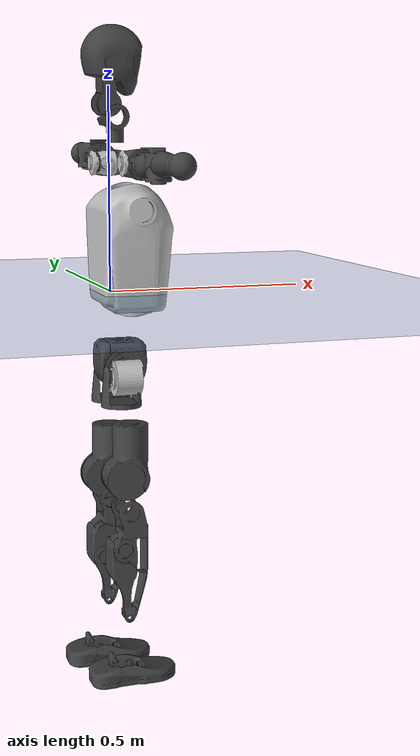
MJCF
<mujoco model="T1">
  <compiler angle="radian" assetdir="assets" balanceinertia="true" inertiafromgeom="false"/>

  <option timestep="0.005" density="1.2" viscosity="2e-05"/>

  <size nkey="1"/>

  <visual>
    <quality shadowsize="8192"/>
    <map shadowclip="0.5"/>
  </visual>

  <default>
    <default class="/">
      <joint armature="0.01" damping="0.01" frictionloss="0.1"/>
      <geom contype="0" conaffinity="0" group="1" solref="-1000 -80"/>
      <site size="0.01 0.005 0.005" group="5"/>
      <general forcelimited="true" biastype="affine" gainprm="25" biasprm="0 -25 -0.6"/>
      <default class="t1">
        <geom rgba="0.25 0.25 0.25 1"/>
        <default class="visual">
          <geom type="mesh" group="2"/>
        </default>
        <default class="collision">
          <geom group="3"/>
        </default>
        <default class="foot">
          <geom size="0.1115 0.05 0.015" type="box" condim="6" group="4" priority="1" solimp="0.015 1 0.015"/>
        </default>
        <default class="reward_collision_sphere">
          <geom group="5" rgba="1 0 0 1"/>
        </default>
      </default>
    </default>
  </default>

  <asset>
    <texture type="skybox" colorspace="auto" name="//unnamed_texture_0" builtin="gradient" rgb1="0.95 0.95 0.95" rgb2="0.95 0.95 0.95" width="100" height="600"/>
    <texture type="2d" colorspace="auto" name="texplane" builtin="checker" rgb1="0.345 0.575 0.748" rgb2="0.345 0.575 0.748" markrgb="1 1 1" width="512" height="512"/>
    <material name="MatPlane" class="/" texture="texplane" texuniform="true" texrepeat="2 2" specular="0.9"/>
    <mesh name="Trunk" class="/" file="Trunk.stl"/>
    <mesh name="H1" class="/" file="H1.stl"/>
    <mesh name="H2" class="/" file="H2.stl"/>
    <mesh name="AL1" class="/" file="AL1.stl"/>
    <mesh name="AL2" class="/" file="AL2.stl"/>
    <mesh name="AL3" class="/" file="AL3.stl"/>
    <mesh name="left_hand_link" class="/" file="left_hand_link.stl"/>
    <mesh name="AR1" class="/" file="AR1.stl"/>
    <mesh name="AR2" class="/" file="AR2.stl"/>
    <mesh name="AR3" class="/" file="AR3.stl"/>
    <mesh name="right_hand_link" class="/" file="right_hand_link.stl"/>
    <mesh name="Waist" class="/" file="Waist.stl"/>
    <mesh name="Hip_Pitch_Left" class="/" file="Hip_Pitch_Left.stl"/>
    <mesh name="Hip_Roll_Left" class="/" file="Hip_Roll_Left.stl"/>
    <mesh name="Hip_Yaw_Left" class="/" file="Hip_Yaw_Left.stl"/>
    <mesh name="Shank_Left" class="/" file="Shank_Left.stl"/>
    <mesh name="Ankle_Cross_Left" class="/" file="Ankle_Cross_Left.stl"/>
    <mesh name="left_foot_link" class="/" file="left_foot_link.stl"/>
    <mesh name="Hip_Pitch_Right" class="/" file="Hip_Pitch_Right.stl"/>
    <mesh name="Hip_Roll_Right" class="/" file="Hip_Roll_Right.stl"/>
    <mesh name="Hip_Yaw_Right" class="/" file="Hip_Yaw_Right.stl"/>
    <mesh name="Shank_Right" class="/" file="Shank_Right.stl"/>
    <mesh name="Ankle_Cross_Right" class="/" file="Ankle_Cross_Right.stl"/>
    <mesh name="right_foot_link" class="/" file="right_foot_link.stl"/>
  </asset>

  <worldbody>
    <geom name="floor" class="/" size="100 100 0.125" type="plane" group="0" material="MatPlane"/>
    <light name="toplight_shadow" class="/" pos="0 0 5" dir="0.0990148 0.0990148 -0.990148" type="directional" ambient="0.04 0.04 0.04" diffuse="0.55 0.55 0.55" specular="0.12 0.12 0.12"/>
    <light name="toplight_fill" class="/" pos="0 0 5" dir="0.0990148 0.0990148 -0.990148" type="directional" castshadow="false" ambient="0.04 0.04 0.04" diffuse="0.3 0.3 0.3" specular="0.08 0.08 0.08"/>
    <body name="trunk" childclass="t1" pos="-0.00371142 0.00538016 -0.0125403" quat="0.99999 0.00291412 -0.00304039 -0.00138992">
      <inertial pos="0.0323151 0.0118047 0.151059" quat="0.999993 -0.00163713 -0.00218464 -0.00266776" mass="7.99897" diaginertia="0.000599532 0.00779264 0.424429"/>
      <joint name="//unnamed_joint_0" type="free" armature="0" damping="0" frictionloss="0"/>
      <geom name="//unnamed_geom_1" class="visual" rgba="0.76 0.76 0.76 1" mesh="Trunk"/>
      <geom name="//unnamed_geom_2" class="collision" size="0.0629493 0.0839325 0.125899" pos="0.0226223 0 0.182645" type="box"/>
      <geom name="//unnamed_geom_3" class="reward_collision_sphere" size="0.0965223" pos="0.0226223 0 0.152204"/>
      <geom name="//unnamed_geom_4" class="reward_collision_sphere" size="0.0125899" pos="0.0226223 0.0526062 0"/>
      <geom name="//unnamed_geom_5" class="reward_collision_sphere" size="0.0125899" pos="0.0226223 -0.0526062 0"/>
      <geom name="//unnamed_geom_6" class="reward_collision_sphere" size="0.0125899" pos="0.0226223 0.0662219 0.273967"/>
      <geom name="//unnamed_geom_7" class="reward_collision_sphere" size="0.0125899" pos="0.0226223 -0.0662219 0.273967"/>
      <site name="imu" pos="0.0838049 -0.0858509 0.0826477" size="0.00839325"/>
      <camera name="track" pos="0 -1.23779 0" quat="0.707107 0.707107 0 0" mode="trackcom"/>
      <camera name="ego_camera" pos="0.0459987 0 0.639256" quat="-0.5 -0.5 0.5 0.5"/>
      <body name="H1" pos="0.0240514 0.00540204 0.377686" quat="0.999966 0.00789691 0.000310484 0.00225171">
        <inertial pos="-0.001913 -0.00615965 0.0788831" quat="0.77176 -0.00746456 -0.0229429 0.635456" mass="0.165247" diaginertia="1.74787e-06 1.47901e-05 0.00100977"/>
        <joint name="AAHead_yaw" pos="0 0 0" axis="0.0499359 -0.0258807 0.998417" stiffness="0.0323129" range="-1.67262 1.62315" armature="0.000529696" damping="0.0693845" frictionloss="0.0741058"/>
        <geom name="//unnamed_geom_8" class="visual" mesh="H1"/>
        <body name="H2" pos="-0.0185095 0.0114359 0.0925053" quat="0.999986 0.00372002 -0.000804639 0.00361524">
          <inertial pos="0.00480372 -0.00550352 0.153866" quat="0.985035 0.103549 -0.0980738 -0.0967713" mass="0.39853" diaginertia="1.4613e-05 0.000178624 0.011867"/>
          <joint name="Head_pitch" pos="0 0 0" axis="0.0600016 -0.997932 -0.0230341" range="-1.09745 0.5817" armature="0.00531102" damping="0.0500038" frictionloss="0.105482"/>
          <geom name="//unnamed_geom_9" class="visual" mesh="H2"/>
          <geom name="//unnamed_geom_10" class="collision" size="0.067146" pos="0.00377038 0 0.167424"/>
          <geom name="//unnamed_geom_11" class="reward_collision_sphere" size="0.0755392" pos="0.00754077 0 0.152204"/>
        </body>
      </body>
      <body name="AL1" pos="0.0201117 0.0672831 0.325532" quat="0.999975 -0.00257132 0.0039728 -0.00528105">
        <inertial pos="0.00204141 0.0130102 -0.0013033" quat="0.514778 0.513225 -0.490712 0.480422" mass="0.298191" diaginertia="8.89903e-06 0.000130723 0.00266797"/>
        <joint name="Left_Shoulder_Pitch" pos="0 0 0" axis="-0.010188 0.999891 0.0106791" stiffness="0.0441506" range="-3.49627 1.31609" armature="0.0113157" damping="0" frictionloss="0.134483"/>
        <geom name="//unnamed_geom_12" class="visual" rgba="0.76 0.76 0.76 1" mesh="AL1"/>
        <body name="AL2" pos="0.0144689 0.0185735 0.000708696" quat="1 0.000311211 -0.000517785 0.000206391">
          <inertial pos="-0.00194969 0.0307693 -0.0154747" quat="0.497749 0.509734 -0.474091 0.517354" mass="0.0643849" diaginertia="2.62782e-06 3.16491e-05 0.00105168"/>
          <joint name="Left_Shoulder_Roll" pos="0 0 0" axis="-0.999615 -0.0243598 0.013259" range="-1.90352 1.41185" armature="0.0146187" damping="0.0658882" frictionloss="0.0818242"/>
          <geom name="//unnamed_geom_13" class="visual" mesh="AL2"/>
          <body name="AL3" pos="-0.0121841 0.0410879 0.0150763" quat="0.999996 0.00120805 -0.000159446 0.00235836">
            <inertial pos="-0.0122417 0.0523286 -0.00296694" quat="0.69374 0.718525 0.0213881 0.044603" mass="0.711441" diaginertia="0.000125983 0.00108741 0.00683459"/>
            <joint name="Left_Elbow_Pitch" pos="0 0 0" axis="0.0509125 -0.996019 -0.0731649" stiffness="0.0866787" range="-2.60572 1.9831" armature="0.0160478" damping="0.100445" frictionloss="0.138804"/>
            <geom name="//unnamed_geom_14" class="visual" mesh="AL3"/>
            <geom name="//unnamed_geom_15" class="collision" size="0.0251797 0.0629493" pos="0 0.0309448 0" quat="0.707105 0.707108 0 0" type="cylinder"/>
            <geom name="//unnamed_geom_16" class="reward_collision_sphere" size="0.0302157"/>
            <body name="left_hand_link" pos="0.0143055 0.0774269 0.00399476" quat="0.999987 -0.00432251 0.00190055 0.00179183">
              <inertial pos="0.00557315 0.0621286 -0.0102117" quat="0.708521 0.705689 -0.00013112 -0.000687789" mass="0.190736" diaginertia="5.34497e-05 0.000629687 0.00175914"/>
              <joint name="Left_Elbow_Yaw" pos="0 0 0" axis="-0.0095388 -0.0613548 0.99807" stiffness="0.0371294" range="-2.2346 -0.0833043" armature="0.000621645" damping="0" frictionloss="0.131997"/>
              <geom name="//unnamed_geom_17" class="visual" mesh="left_hand_link"/>
              <geom name="//unnamed_geom_18" class="collision" size="0.0251797 0.0734409" pos="0 0.0804565 0" quat="0.707105 0.707108 0 0" type="cylinder"/>
              <geom name="//unnamed_geom_19" class="reward_collision_sphere" size="0.0419662"/>
              <geom name="//unnamed_geom_20" class="reward_collision_sphere" size="0.0293764" pos="0 0.0680786 0"/>
              <geom name="//unnamed_geom_21" class="reward_collision_sphere" size="0.0293764" pos="0 0.133063 0"/>
            </body>
          </body>
        </body>
      </body>
      <body name="AR1" pos="0.0363818 -0.0767777 0.330916" quat="0.999997 0.00149817 0.000499008 0.00165339">
        <inertial pos="0.0160186 -0.0370784 -0.0131174" quat="0.464274 0.536648 -0.548202 0.442644" mass="0.260045" diaginertia="1.12871e-05 0.000127417 0.00180868"/>
        <joint name="Right_Shoulder_Pitch" pos="0 0 0" axis="0.00731434 -0.999931 -0.00919865" stiffness="0.00112611" range="-1.20574 3.29072" armature="0.00769495" damping="0.00507165" frictionloss="0.138418"/>
        <geom name="//unnamed_geom_22" class="visual" rgba="0.76 0.76 0.76 1" mesh="AR1"/>
        <body name="AR2" pos="0.00752621 -0.020564 -0.000952894" quat="0.999991 -0.00316876 0.0019595 0.00189052">
          <inertial pos="-0.00634812 -0.0289142 -0.00999537" quat="0.513748 0.487115 -0.511312 0.487177" mass="0.0991638" diaginertia="2.88198e-06 2.51396e-05 0.00123452"/>
          <joint name="Right_Shoulder_Roll" pos="0 0 0" axis="-0.998952 0.03718 0.0266905" stiffness="0.0256583" range="-1.95434 1.22662" armature="0.0134259" damping="0" frictionloss="0.0599093"/>
          <geom name="//unnamed_geom_23" class="visual" mesh="AR2"/>
          <body name="AR3" pos="0.00463901 -0.0316865 -0.00487509" quat="1 0.000328615 -0.000240974 -6.62345e-05">
            <inertial pos="0.000452665 -0.0363473 -0.0141099" quat="0.712893 0.698177 0.0429877 0.0498398" mass="0.537578" diaginertia="8.33614e-05 0.00132585 0.00409599"/>
            <joint name="Right_Elbow_Pitch" pos="0 0 0" axis="-0.0214205 0.998725 -0.0457166" range="-2.50454 2.53663" armature="0.00718297" damping="0" frictionloss="0.0825846"/>
            <geom name="//unnamed_geom_24" class="visual" mesh="AR3"/>
            <geom name="//unnamed_geom_25" class="collision" size="0.0251797 0.0629493" pos="0 -0.0309448 0" quat="0.707105 0.707108 0 0" type="cylinder"/>
            <geom name="//unnamed_geom_26" class="reward_collision_sphere" size="0.0302157"/>
            <body name="right_hand_link" pos="0.00508295 -0.0889428 0.00689544" quat="0.999988 -0.000928656 0.00376387 0.00301872">
              <inertial pos="-0.00243414 -0.062088 0.0152881" quat="0.721616 0.692258 -0.00682988 0.0017176" mass="0.221068" diaginertia="5.8377e-05 0.000767911 0.00210377"/>
              <joint name="Right_Elbow_Yaw" pos="0 0 0" axis="-0.00565015 0.0245392 0.999683" stiffness="0.00481339" range="-0.109095 2.39643" armature="0.00716855" damping="0.0427081" frictionloss="0.031103"/>
              <geom name="//unnamed_geom_27" class="visual" mesh="right_hand_link"/>
              <geom name="//unnamed_geom_28" class="collision" size="0.0251797 0.0734409" pos="0 -0.0804565 0" quat="0.707105 0.707108 0 0" type="cylinder"/>
              <geom name="//unnamed_geom_29" class="reward_collision_sphere" size="0.0419662"/>
              <geom name="//unnamed_geom_30" class="reward_collision_sphere" size="0.0293764" pos="0 -0.0680786 0"/>
              <geom name="//unnamed_geom_31" class="reward_collision_sphere" size="0.0293764" pos="0 -0.133063 0"/>
            </body>
          </body>
        </body>
      </body>
      <body name="Waist" pos="0.0250307 -0.00554276 -0.177419" quat="0.999983 -0.00157222 0.00552818 0.000350666">
        <inertial pos="0.0198533 -0.0132527 0.0116043" quat="0.979563 0.0105888 -0.200763 0.00618346" mass="1.85494" diaginertia="5.52095e-05 0.000581107 0.037261"/>
        <joint name="Waist" pos="0 0 0" axis="-0.0556742 -0.0646632 0.996353" range="-1.73848 1.74297" armature="0.012697" damping="0" frictionloss="0.093931"/>
        <geom name="//unnamed_geom_32" class="visual" mesh="Waist"/>
        <body name="Hip_Pitch_Left" pos="0.0158985 0.0541052 -0.0130679" quat="0.999956 -0.00193177 -0.00186294 0.00897812">
          <inertial pos="0.0144494 -0.0213943 -0.0249913" quat="0.977197 0.210924 0.020231 0.0136934" mass="0.639829" diaginertia="1.68903e-05 0.000175648 0.00981173"/>
          <joint name="Left_Hip_Pitch" pos="0 0 0" axis="-0.00504135 0.998937 0.0458163" range="-1.65811 1.49706" armature="0.0148969" damping="0.0201003" frictionloss="0.0113096"/>
          <geom name="//unnamed_geom_33" class="visual" rgba="0.76 0.76 0.76 1" mesh="Hip_Pitch_Left"/>
          <body name="Hip_Roll_Left" pos="-0.0185139 0.0130859 -0.0118948" quat="0.999957 -0.00517321 0.00711388 0.00298825">
            <inertial pos="-0.0116284 0.00972807 -0.0653043" quat="0.718822 -0.0220741 -0.0096375 0.694777" mass="0.237316" diaginertia="1.29442e-05 0.000117978 0.00392624"/>
            <joint name="Left_Hip_Roll" pos="0 0 0" axis="-0.999415 -0.0129658 0.0316576" range="-1.54489 0.13665" armature="0.00361346" damping="0" frictionloss="0.0830033"/>
            <geom name="//unnamed_geom_34" class="visual" mesh="Hip_Roll_Left"/>
            <geom name="//unnamed_geom_35" class="reward_collision_sphere" size="0.0461629"/>
            <body name="Hip_Yaw_Left" pos="-0.00954133 -0.00835608 -0.13565" quat="0.999994 0.00105681 0.00136679 -0.00283297">
              <inertial pos="-0.00219558 -0.0185139 -0.152172" quat="0.690161 -0.0573844 -0.0615989 0.718743" mass="1.45001" diaginertia="0.000223234 0.0026152 0.0224593"/>
              <joint name="Left_Hip_Yaw" pos="0 0 0" axis="0.0366735 -0.0229982 -0.999063" range="-0.961339 1.05487" armature="0.00867976" damping="0.0300569" frictionloss="0.0316569"/>
              <geom name="//unnamed_geom_36" class="visual" mesh="Hip_Yaw_Left"/>
              <geom name="//unnamed_geom_37" class="collision" size="0.0419662 0.067146" type="cylinder"/>
              <body name="Shank_Left" pos="-0.00227083 0.00040433 -0.19213" quat="0.999975 0.00424205 0.000122953 -0.00570833">
                <inertial pos="-0.00463868 0.0130525 -0.198746" quat="0.999627 0.026618 -0.00017385 -0.00607664" mass="1.19809" diaginertia="0.000291259 0.00293324 0.0166461"/>
                <joint name="Left_Knee_Pitch" pos="0 0 0" axis="0.0113767 0.999155 0.0395042" range="0.0419588 2.64126" armature="0.0020002" damping="0.0545566" frictionloss="0.0843802"/>
                <geom name="//unnamed_geom_38" class="visual" mesh="Shank_Left"/>
                <geom name="//unnamed_geom_39" class="collision" size="0.0419662 0.0629493" pos="0 0 -0.182645" type="cylinder"/>
                <geom name="//unnamed_geom_40" class="reward_collision_sphere" size="0.0545561"/>
                <body name="Ankle_Cross_Left" pos="-0.0106118 0.0141174 -0.428613" quat="0.999988 -0.000166583 0.000979688 0.00476939">
                  <inertial pos="0.00436217 -0.00278769 -0.0205412" quat="0.437978 0.576766 0.497916 0.477071" mass="0.045017" diaginertia="1.65724e-07 2.12359e-06 8.46674e-05"/>
                  <joint name="Left_Ankle_Pitch" pos="0 0 0" axis="-0.00973418 0.999909 0.00933533" range="-0.529802 0.0111189" armature="0.00368223" damping="0.0980311" frictionloss="0.0346313"/>
                  <geom name="//unnamed_geom_41" class="visual" mesh="Ankle_Cross_Left"/>
                  <body name="left_foot_link" pos="0.0113147 0.011238 -0.00283445" quat="0.999964 7.88693e-05 0.00152779 -0.00839078">
                    <inertial pos="0.00706169 -0.00666974 -0.0180362" quat="-0.0247679 0.568775 0.0131947 0.822014" mass="0.301956" diaginertia="1.76438e-05 0.000158567 0.0105307"/>
                    <joint name="Left_Ankle_Roll" pos="0 0 0" axis="-0.997129 0.0125913 -0.074666" range="-0.516202 0.092278" armature="0.00766821" damping="0" frictionloss="0.00445231"/>
                    <geom name="//unnamed_geom_42" class="visual" mesh="left_foot_link"/>
                    <geom name="left_foot" class="foot" size="0.0736512 0.0578349 0.003678" pos="0.00377038 0 -0.0228306"/>
                    <geom name="//unnamed_geom_44" class="reward_collision_sphere" size="0.0436449" pos="0.00377038 0 -0.0228306"/>
                    <geom name="//unnamed_geom_45" class="reward_collision_sphere" size="0.0251797" pos="0.0358186 -0.0142346 -0.0228306"/>
                    <geom name="//unnamed_geom_46" class="reward_collision_sphere" size="0.0251797" pos="-0.0263927 -0.0142346 -0.0228306"/>
                    <site name="left_foot" class="foot" pos="0.00377038 0 -0.0228306" size="0.00839325"/>
                  </body>
                </body>
              </body>
            </body>
          </body>
        </body>
        <body name="Hip_Pitch_Right" pos="0.000952531 -0.0622189 0.00144124" quat="0.999997 0.000160312 -0.0022421 -0.00112819">
          <inertial pos="0.00981376 0.00545838 -0.0171648" quat="0.985514 -0.157154 0.0538967 -0.0340616" mass="0.825419" diaginertia="1.68651e-05 0.000140712 0.0138434"/>
          <joint name="Right_Hip_Pitch" pos="0 0 0" axis="-0.0221962 -0.999381 -0.0273046" range="-1.65025 2.02245" armature="0.00373432" damping="0" frictionloss="0.0749913"/>
          <geom name="//unnamed_geom_47" class="visual" rgba="0.76 0.76 0.76 1" mesh="Hip_Pitch_Right"/>
          <body name="Hip_Roll_Right" pos="-0.0113879 0.00106086 -0.014376" quat="0.999996 0.00152252 0.00171648 -0.00177493">
            <inertial pos="0.00206638 -0.0125863 -0.0830586" quat="0.720567 -0.041 -0.0597606 0.689587" mass="0.244221" diaginertia="1.15857e-05 0.00011967 0.00456988"/>
            <joint name="Right_Hip_Roll" pos="0 0 0" axis="-0.999348 -0.0163857 0.0321682" stiffness="0.0932845" range="-0.0764049 1.60387" armature="0.0137329" damping="0" frictionloss="0.0760943"/>
            <geom name="//unnamed_geom_48" class="visual" mesh="Hip_Roll_Right"/>
            <geom name="//unnamed_geom_49" class="reward_collision_sphere" size="0.0461629"/>
            <body name="Hip_Yaw_Right" pos="0.0153559 -0.0181398 -0.119051" quat="1 -3.1457e-05 0.000105064 -0.00024477">
              <inertial pos="0.0111993 0.00150451 -0.118204" quat="0.683744 -0.0394875 -0.0933357 0.72265" mass="0.959933" diaginertia="0.00017309 0.00198142 0.0182449"/>
              <joint name="Right_Hip_Yaw" pos="0 0 0" axis="-0.012504 -0.0274332 -0.999545" stiffness="0.0404113" range="-1.31096 1.2291" armature="0.00621694" damping="0.0385858" frictionloss="0.0866285"/>
              <geom name="//unnamed_geom_50" class="visual" mesh="Hip_Yaw_Right"/>
              <geom name="//unnamed_geom_51" class="collision" size="0.0419662 0.067146" type="cylinder"/>
              <body name="Shank_Right" pos="-0.0112077 -0.0135625 -0.217376" quat="1 -0.000284189 -0.000907077 -4.64275e-05">
                <inertial pos="-0.0211186 -0.00572017 -0.176843" quat="0.995864 -0.00702234 0.0224867 -0.0877502" mass="1.45582" diaginertia="0.000318044 0.00303929 0.0192088"/>
                <joint name="Right_Knee_Pitch" pos="0 0 0" axis="-0.0676332 -0.997526 0.0191536" range="-2.27005 -0.137893" armature="0.00390711" damping="0.0604991" frictionloss="0.0251126"/>
                <geom name="//unnamed_geom_52" class="visual" mesh="Shank_Right"/>
                <geom name="//unnamed_geom_53" class="collision" size="0.0419662 0.0629493" pos="0 0 -0.182645" type="cylinder"/>
                <geom name="//unnamed_geom_54" class="reward_collision_sphere" size="0.0545561"/>
                <body name="Ankle_Cross_Right" pos="0.0107985 0.0173666 -0.424361" quat="0.999965 0.0030548 0.000840908 0.00771513">
                  <inertial pos="0.00504271 0.00143915 -0.00659766" quat="0.442878 0.562669 0.543522 0.438002" mass="0.0426592" diaginertia="2.72729e-07 2.44544e-06 0.000105868"/>
                  <joint name="Right_Ankle_Pitch" pos="0 0 0" axis="-0.036251 -0.998919 0.0290818" range="-0.141734 0.52125" armature="0.0101528" damping="0" frictionloss="0.0878364"/>
                  <geom name="//unnamed_geom_55" class="visual" mesh="Ankle_Cross_Right"/>
                  <body name="right_foot_link" pos="-0.00365919 0.00124074 -0.00609275" quat="0.999975 0.00167574 -0.00678508 -0.00132493">
                    <inertial pos="0.0139637 0.00634206 -0.0130223" quat="-0.00426679 0.601425 -0.0328681 0.798242" mass="0.405223" diaginertia="2.48493e-05 0.000250435 0.0197848"/>
                    <joint name="Right_Ankle_Roll" pos="0 0 0" axis="-0.999873 -0.0148519 -0.00574241" range="-0.669964 0.651297" armature="0.00533639" damping="0" frictionloss="0.0545041"/>
                    <geom name="//unnamed_geom_56" class="visual" mesh="right_foot_link"/>
                    <geom name="right_foot" class="foot" size="0.0896928 0.05473 0.0145411" pos="0.00377038 0 -0.0228306"/>
                    <geom name="//unnamed_geom_58" class="reward_collision_sphere" size="0.033573"/>
                    <geom name="//unnamed_geom_59" class="reward_collision_sphere" size="0.0251797" pos="0.00377038 0 -0.0228306"/>
                    <geom name="//unnamed_geom_60" class="reward_collision_sphere" size="0.0251797" pos="0.0358186 0.0142346 -0.0228306"/>
                    <geom name="//unnamed_geom_61" class="reward_collision_sphere" size="0.0251797" pos="-0.0263927 0.0142346 -0.0228306"/>
                    <site name="right_foot" class="foot" pos="0.00377038 0 -0.0228306" size="0.00839325"/>
                  </body>
                </body>
              </body>
            </body>
          </body>
        </body>
      </body>
    </body>
  </worldbody>

  <contact>
    <pair class="/" geom1="floor" geom2="left_foot" name="//unnamed_contact_0"/>
    <pair class="/" geom1="floor" geom2="right_foot" name="//unnamed_contact_1"/>
  </contact>

  <actuator>
    <general name="AAHead_yaw" class="/" joint="AAHead_yaw" forcerange="-7.6907 7.6907" gainprm="29.8206" biasprm="0 -29.8206 -0.520538"/>
    <general name="Head_pitch" class="/" joint="Head_pitch" forcerange="-4.29686 4.29686" gainprm="29.8206" biasprm="0 -29.8206 -0.520538"/>
    <general name="Left_Shoulder_Pitch" class="/" joint="Left_Shoulder_Pitch" forcerange="-12.1444 12.1444" gainprm="29.8206" biasprm="0 -29.8206 -0.520538"/>
    <general name="Left_Shoulder_Roll" class="/" joint="Left_Shoulder_Roll" forcerange="-21.4054 21.4054" gainprm="29.8206" biasprm="0 -29.8206 -0.520538"/>
    <general name="Left_Elbow_Pitch" class="/" joint="Left_Elbow_Pitch" forcerange="-24.9313 24.9313" gainprm="29.8206" biasprm="0 -29.8206 -0.520538"/>
    <general name="Left_Elbow_Yaw" class="/" joint="Left_Elbow_Yaw" forcerange="-6.2633 6.2633" gainprm="29.8206" biasprm="0 -29.8206 -0.520538"/>
    <general name="Right_Shoulder_Pitch" class="/" joint="Right_Shoulder_Pitch" forcerange="-5.95858 5.95858" gainprm="29.8206" biasprm="0 -29.8206 -0.520538"/>
    <general name="Right_Shoulder_Roll" class="/" joint="Right_Shoulder_Roll" forcerange="-20.4154 20.4154" gainprm="29.8206" biasprm="0 -29.8206 -0.520538"/>
    <general name="Right_Elbow_Pitch" class="/" joint="Right_Elbow_Pitch" forcerange="-15.5766 15.5766" gainprm="29.8206" biasprm="0 -29.8206 -0.520538"/>
    <general name="Right_Elbow_Yaw" class="/" joint="Right_Elbow_Yaw" forcerange="-13.975 13.975" gainprm="29.8206" biasprm="0 -29.8206 -0.520538"/>
    <general name="Waist" class="/" joint="Waist" forcerange="-29.2802 29.2802" gainprm="29.8206" biasprm="0 -29.8206 -0.520538"/>
    <general name="Left_Hip_Pitch" class="/" joint="Left_Hip_Pitch" forcerange="-51.1056 51.1056" gainprm="29.8206" biasprm="0 -29.8206 -0.520538"/>
    <general name="Left_Hip_Roll" class="/" joint="Left_Hip_Roll" forcerange="-9.87731 9.87731" gainprm="29.8206" biasprm="0 -29.8206 -0.520538"/>
    <general name="Left_Hip_Yaw" class="/" joint="Left_Hip_Yaw" forcerange="-41.6779 41.6779" gainprm="29.8206" biasprm="0 -29.8206 -0.520538"/>
    <general name="Left_Knee_Pitch" class="/" joint="Left_Knee_Pitch" forcerange="-83.073 83.073" gainprm="29.8206" biasprm="0 -29.8206 -0.520538"/>
    <general name="Left_Ankle_Pitch" class="/" joint="Left_Ankle_Pitch" forcerange="-15.3173 15.3173" gainprm="29.8206" biasprm="0 -29.8206 -0.520538"/>
    <general name="Left_Ankle_Roll" class="/" joint="Left_Ankle_Roll" forcerange="-12.4872 12.4872" gainprm="29.8206" biasprm="0 -29.8206 -0.520538"/>
    <general name="Right_Hip_Pitch" class="/" joint="Right_Hip_Pitch" forcerange="-26.2858 26.2858" gainprm="29.8206" biasprm="0 -29.8206 -0.520538"/>
    <general name="Right_Hip_Roll" class="/" joint="Right_Hip_Roll" forcerange="-27.5398 27.5398" gainprm="29.8206" biasprm="0 -29.8206 -0.520538"/>
    <general name="Right_Hip_Yaw" class="/" joint="Right_Hip_Yaw" forcerange="-14.9875 14.9875" gainprm="29.8206" biasprm="0 -29.8206 -0.520538"/>
    <general name="Right_Knee_Pitch" class="/" joint="Right_Knee_Pitch" forcerange="-51.0852 51.0852" gainprm="29.8206" biasprm="0 -29.8206 -0.520538"/>
    <general name="Right_Ankle_Pitch" class="/" joint="Right_Ankle_Pitch" forcerange="-26.338 26.338" gainprm="29.8206" biasprm="0 -29.8206 -0.520538"/>
    <general name="Right_Ankle_Roll" class="/" joint="Right_Ankle_Roll" forcerange="-12.2345 12.2345" gainprm="29.8206" biasprm="0 -29.8206 -0.520538"/>
  </actuator>

  <sensor>
    <gyro site="imu" name="imu_angular_velocity"/>
    <velocimeter site="imu" name="imu_linear_velocity"/>
    <framelinvel objtype="site" objname="left_foot" name="left_foot_global_linear_velocity"/>
    <framelinvel objtype="site" objname="right_foot" name="right_foot_global_linear_velocity"/>
  </sensor>

  <keyframe>
    <key name="home" qpos="0 0 0.6385 1 0 0 0 0 0 0 1.4 0 -0.4 0 -1.4 0 0.4 0 -0.4 0 0 0.8 -0.4 0 0.4 0 0 -0.8 0.4 0"/>
  </keyframe>
</mujoco>
